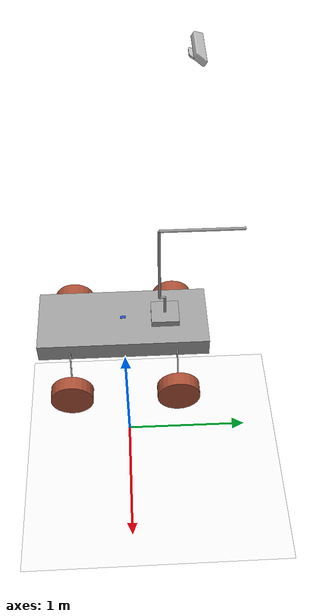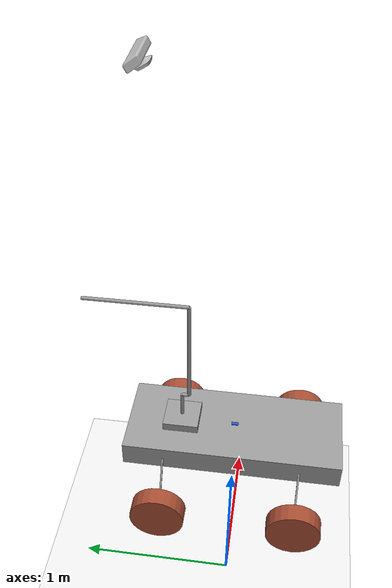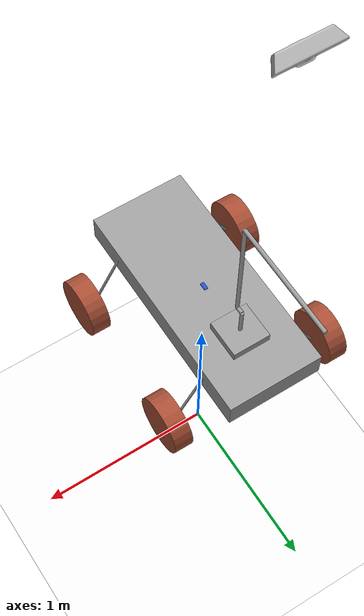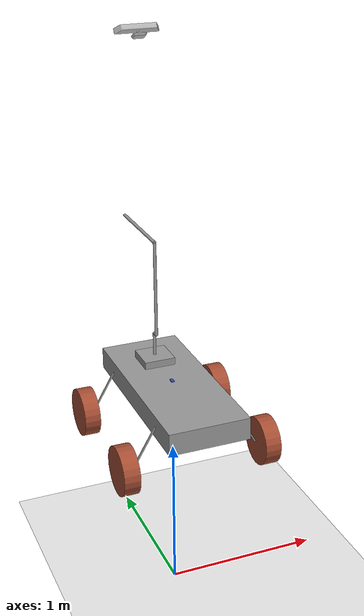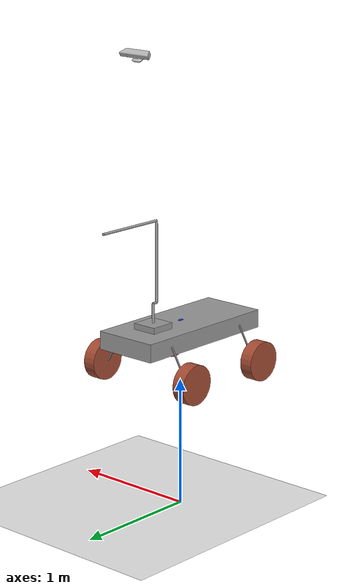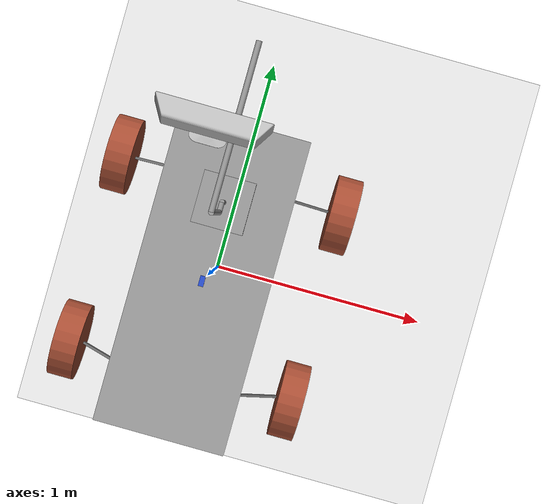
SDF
<?xml version="1.0" ?>
<sdf version='1.6'>
  <world name='sim'>
    <gravity>0 0 -9.8</gravity>
    <magnetic_field>6e-06 2.3e-05 -4.2e-05</magnetic_field>
    <atmosphere type='adiabatic'/>
    <physics name='default_physics' default='0' type='ode'>
      <max_step_size>0.001</max_step_size>
      <real_time_factor>1</real_time_factor>
      <real_time_update_rate>1000</real_time_update_rate>
    </physics>
    <scene>
      <ambient>0.6 0.6 0.6 1</ambient>
      <background>0.7 0.7 0.7 1</background>
      <shadows>1</shadows>
    </scene>
    <spherical_coordinates>
      <surface_model>EARTH_WGS84</surface_model>
      <latitude_deg>0</latitude_deg>
      <longitude_deg>0</longitude_deg>
      <elevation>0</elevation>
      <heading_deg>180</heading_deg>
    </spherical_coordinates>

    <include>
      <uri>model://Robot_Base</uri>
      <name>rover</name>
      <pose>0 0 0.4   0 0 0</pose>
    </include>

    <plugin name="SimMotorNode" filename="/home/david/Documents/14_rockraiders/devel/lib/libSimMotorNode.so"/>

    <model name='ground_plane'>
      <static>1</static>
      <link name='link'>
        <collision name='collision'>
          <geometry>
            <plane>
              <normal>0 0 1</normal>
              <size>100 100</size>
            </plane>
          </geometry>
          <surface>
            <friction>
              <ode>
                <mu>0.25</mu>
                <mu2>0.25</mu2>
              </ode>
              <torsional>
                <ode/>
              </torsional>
            </friction>
            <contact>
              <ode/>
            </contact>
            <bounce/>
          </surface>
          <max_contacts>10</max_contacts>
        </collision>
        <visual name='visual'>
          <cast_shadows>0</cast_shadows>
          <geometry>
            <plane>
              <normal>0 0 1</normal>
              <size>100 100</size>
            </plane>
          </geometry>
          <material>
            <script>
              <uri>file://media/materials/scripts/gazebo.material</uri>
              <name>Gazebo/White</name>
            </script>
          </material>
        </visual>
        <self_collide>0</self_collide>
        <kinematic>0</kinematic>
        <gravity>1</gravity>
      </link>
      <pose frame=''>0.000967 -0.039388 0 0 -0 0</pose>
    </model>
    <plugin name='FixFrictionNode' filename='libFixFrictionNode.so'/>
  </world>
</sdf>

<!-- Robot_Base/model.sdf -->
<sdf version='1.6'>
  <model name='Robot_Base'>

    <include>
      <uri> model://kinect_ros </uri>
      <name> depth_camera </name>
      <pose frame=''> 0.0 0.5 3.12   0.0 0.5235 1.57 </pose>
    </include>

    <include>
      <uri> model://gps_imu </uri>
      <name> imu </name>
      <pose frame=''> 0.0 0.0 1.06985 0.0 0.0 0.0 </pose>
    </include>

    <link name='chassis'>
      <pose frame=''>0 0 1 0 0 0</pose>
      <inertial>
        <mass>50</mass>
        <inertia>
          <ixx>1.0</ixx>
          <ixy>0</ixy>
          <ixz>0</ixz>
          <iyy>1.0</iyy>
          <iyz>0</iyz>
          <izz>1.0</izz>
        </inertia>
        <pose frame=''>0 0 0 0 0 0</pose>
      </inertial>
      <self_collide>0</self_collide>
      <kinematic>0</kinematic>
      <visual name='visual'>
        <pose frame=''>0 0 0 0 0 0</pose>
        <geometry>
          <box>
            <size>0.508 1.2192 0.1397</size>
          </box>
        </geometry>
        <material>
          <lighting>1</lighting>
          <script>
            <uri>file://media/materials/scripts/gazebo.material</uri>
            <name>Gazebo/Grey</name>
          </script>
          <ambient>0.9 0.9 0.9 1</ambient>
          <diffuse>0.7 0.7 0.7 1</diffuse>
          <specular>0.01 0.01 0.01 1</specular>
          <emissive>0 0 0 1</emissive>
          <shader type='vertex'>
            <normal_map>__default__</normal_map>
          </shader>
        </material>
        <cast_shadows>1</cast_shadows>
        <transparency>0</transparency>
      </visual>
      <collision name='collision'>
        <laser_retro>0</laser_retro>
        <max_contacts>10</max_contacts>
        <pose frame=''>0 0 0 0 -0 0</pose>
        <geometry>
          <box>
            <size>0.508 1.2192 0.1397</size>
          </box>
        </geometry>
        <surface>
          <friction>
            <ode>
              <mu>1</mu>
              <mu2>1</mu2>
              <fdir1>0 0 0</fdir1>
              <slip1>0</slip1>
              <slip2>0</slip2>
            </ode>
            <torsional>
              <coefficient>1</coefficient>
              <patch_radius>0</patch_radius>
              <surface_radius>0</surface_radius>
              <use_patch_radius>1</use_patch_radius>
              <ode>
                <slip>0</slip>
              </ode>
            </torsional>
          </friction>
          <bounce>
            <restitution_coefficient>0</restitution_coefficient>
            <threshold>1e+06</threshold>
          </bounce>
          <contact>
            <collide_without_contact>0</collide_without_contact>
            <collide_without_contact_bitmask>1</collide_without_contact_bitmask>
            <collide_bitmask>1</collide_bitmask>
            <ode>
              <soft_cfm>0</soft_cfm>
              <soft_erp>0.2</soft_erp>
              <kp>1e+13</kp>
              <kd>1</kd>
              <max_vel>0.01</max_vel>
              <min_depth>0</min_depth>
            </ode>
            <bullet>
              <split_impulse>1</split_impulse>
              <split_impulse_penetration_threshold>-0.01</split_impulse_penetration_threshold>
              <soft_cfm>0</soft_cfm>
              <soft_erp>0.2</soft_erp>
              <kp>1e+13</kp>
              <kd>1</kd>
            </bullet>
          </contact>
        </surface>
      </collision>
    </link>
    <link name='back_arm'>
      <pose frame=''>0 0.2667 1.57734 0 -0 0</pose>
      <inertial>
        <mass>1</mass>
        <inertia>
          <ixx>0.145833</ixx>
          <ixy>0</ixy>
          <ixz>0</ixz>
          <iyy>0.145833</iyy>
          <iyz>0</iyz>
          <izz>0.125</izz>
        </inertia>
        <pose frame=''>0 0 0 0 -0 0</pose>
      </inertial>
      <self_collide>0</self_collide>
      <kinematic>0</kinematic>
      <visual name='visual'>
        <pose frame=''>0 0 0 0 -0 0</pose>
        <geometry>
          <cylinder>
            <radius>0.01</radius>
            <length>0.6223</length>
          </cylinder>
        </geometry>
        <material>
          <lighting>1</lighting>
          <script>
            <uri>file://media/materials/scripts/gazebo.material</uri>
            <name>Gazebo/Grey</name>
          </script>
          <ambient>0.3 0.3 0.3 1</ambient>
          <diffuse>0.7 0.7 0.7 1</diffuse>
          <specular>0.01 0.01 0.01 1</specular>
          <emissive>0 0 0 1</emissive>
          <shader type='vertex'>
            <normal_map>__default__</normal_map>
          </shader>
        </material>
        <cast_shadows>1</cast_shadows>
        <transparency>0</transparency>
      </visual>
      <collision name='collision'>
        <laser_retro>0</laser_retro>
        <max_contacts>10</max_contacts>
        <pose frame=''>0 0 0 0 -0 0</pose>
        <geometry>
          <cylinder>
            <radius>0.01</radius>
            <length>0.6223</length>
          </cylinder>
        </geometry>
        <surface>
          <friction>
            <ode>
              <mu>1</mu>
              <mu2>1</mu2>
              <fdir1>0 0 0</fdir1>
              <slip1>0</slip1>
              <slip2>0</slip2>
            </ode>
            <torsional>
              <coefficient>1</coefficient>
              <patch_radius>0</patch_radius>
              <surface_radius>0</surface_radius>
              <use_patch_radius>1</use_patch_radius>
              <ode>
                <slip>0</slip>
              </ode>
            </torsional>
          </friction>
          <bounce>
            <restitution_coefficient>0</restitution_coefficient>
            <threshold>1e+06</threshold>
          </bounce>
          <contact>
            <collide_without_contact>0</collide_without_contact>
            <collide_without_contact_bitmask>1</collide_without_contact_bitmask>
            <collide_bitmask>1</collide_bitmask>
            <ode>
              <soft_cfm>0</soft_cfm>
              <soft_erp>0.2</soft_erp>
              <kp>1e+13</kp>
              <kd>1</kd>
              <max_vel>0.01</max_vel>
              <min_depth>0</min_depth>
            </ode>
            <bullet>
              <split_impulse>1</split_impulse>
              <split_impulse_penetration_threshold>-0.01</split_impulse_penetration_threshold>
              <soft_cfm>0</soft_cfm>
              <soft_erp>0.2</soft_erp>
              <kp>1e+13</kp>
              <kd>1</kd>
            </bullet>
          </contact>
        </surface>
      </collision>
    </link>
    <link name='base_arm'>
      <pose frame=''>-0 0.3048 1.09335 0 -0 0</pose>
      <inertial>
        <mass>1</mass>
        <inertia>
          <ixx>0.166667</ixx>
          <ixy>0</ixy>
          <ixz>0</ixz>
          <iyy>0.166667</iyy>
          <iyz>0</iyz>
          <izz>0.166667</izz>
        </inertia>
        <pose frame=''>0 0 0 0 -0 0</pose>
      </inertial>
      <self_collide>0</self_collide>
      <kinematic>0</kinematic>
      <visual name='visual'>
        <pose frame=''>0 0 0 0 -0 0</pose>
        <geometry>
          <box>
            <size>0.2 0.2 0.04699</size>
          </box>
        </geometry>
        <material>
          <lighting>1</lighting>
          <script>
            <uri>file://media/materials/scripts/gazebo.material</uri>
            <name>Gazebo/Grey</name>
          </script>
          <ambient>0.3 0.3 0.3 1</ambient>
          <diffuse>0.7 0.7 0.7 1</diffuse>
          <specular>0.01 0.01 0.01 1</specular>
          <emissive>0 0 0 1</emissive>
          <shader type='vertex'>
            <normal_map>__default__</normal_map>
          </shader>
        </material>
        <cast_shadows>1</cast_shadows>
        <transparency>0</transparency>
      </visual>
      <collision name='collision'>
        <laser_retro>0</laser_retro>
        <max_contacts>10</max_contacts>
        <pose frame=''>0 0 0 0 -0 0</pose>
        <geometry>
          <box>
            <size>0.2 0.2 0.04699</size>
          </box>
        </geometry>
        <surface>
          <friction>
            <ode>
              <mu>1</mu>
              <mu2>1</mu2>
              <fdir1>0 0 0</fdir1>
              <slip1>0</slip1>
              <slip2>0</slip2>
            </ode>
            <torsional>
              <coefficient>1</coefficient>
              <patch_radius>0</patch_radius>
              <surface_radius>0</surface_radius>
              <use_patch_radius>1</use_patch_radius>
              <ode>
                <slip>0</slip>
              </ode>
            </torsional>
          </friction>
          <bounce>
            <restitution_coefficient>0</restitution_coefficient>
            <threshold>1e+06</threshold>
          </bounce>
          <contact>
            <collide_without_contact>0</collide_without_contact>
            <collide_without_contact_bitmask>1</collide_without_contact_bitmask>
            <collide_bitmask>1</collide_bitmask>
            <ode>
              <soft_cfm>0</soft_cfm>
              <soft_erp>0.2</soft_erp>
              <kp>1e+13</kp>
              <kd>1</kd>
              <max_vel>0.01</max_vel>
              <min_depth>0</min_depth>
            </ode>
            <bullet>
              <split_impulse>1</split_impulse>
              <split_impulse_penetration_threshold>-0.01</split_impulse_penetration_threshold>
              <soft_cfm>0</soft_cfm>
              <soft_erp>0.2</soft_erp>
              <kp>1e+13</kp>
              <kd>1</kd>
            </bullet>
          </contact>
        </surface>
      </collision>
    </link>
    <link name='center_shaft_arm'>
      <pose frame=''>0 0.3048 1.19152 0 -0 0</pose>
      <inertial>
        <mass>1</mass>
        <inertia>
          <ixx>0.145833</ixx>
          <ixy>0</ixy>
          <ixz>0</ixz>
          <iyy>0.145833</iyy>
          <iyz>0</iyz>
          <izz>0.125</izz>
        </inertia>
        <pose frame=''>0 0 0 0 -0 0</pose>
      </inertial>
      <self_collide>0</self_collide>
      <kinematic>0</kinematic>
      <visual name='visual'>
        <pose frame=''>0 0 0 0 -0 0</pose>
        <geometry>
          <cylinder>
            <radius>0.01</radius>
            <length>0.149352</length>
          </cylinder>
        </geometry>
        <material>
          <lighting>1</lighting>
          <script>
            <uri>file://media/materials/scripts/gazebo.material</uri>
            <name>Gazebo/Grey</name>
          </script>
          <ambient>0.3 0.3 0.3 1</ambient>
          <diffuse>0.7 0.7 0.7 1</diffuse>
          <specular>0.01 0.01 0.01 1</specular>
          <emissive>0 0 0 1</emissive>
          <shader type='vertex'>
            <normal_map>__default__</normal_map>
          </shader>
        </material>
        <cast_shadows>1</cast_shadows>
        <transparency>0</transparency>
      </visual>
      <collision name='collision'>
        <laser_retro>0</laser_retro>
        <max_contacts>10</max_contacts>
        <pose frame=''>0 0 0 0 -0 0</pose>
        <geometry>
          <cylinder>
            <radius>0.01</radius>
            <length>0.149352</length>
          </cylinder>
        </geometry>
        <surface>
          <friction>
            <ode>
              <mu>1</mu>
              <mu2>1</mu2>
              <fdir1>0 0 0</fdir1>
              <slip1>0</slip1>
              <slip2>0</slip2>
            </ode>
            <torsional>
              <coefficient>1</coefficient>
              <patch_radius>0</patch_radius>
              <surface_radius>0</surface_radius>
              <use_patch_radius>1</use_patch_radius>
              <ode>
                <slip>0</slip>
              </ode>
            </torsional>
          </friction>
          <bounce>
            <restitution_coefficient>0</restitution_coefficient>
            <threshold>1e+06</threshold>
          </bounce>
          <contact>
            <collide_without_contact>0</collide_without_contact>
            <collide_without_contact_bitmask>1</collide_without_contact_bitmask>
            <collide_bitmask>1</collide_bitmask>
            <ode>
              <soft_cfm>0</soft_cfm>
              <soft_erp>0.2</soft_erp>
              <kp>1e+13</kp>
              <kd>1</kd>
              <max_vel>0.01</max_vel>
              <min_depth>0</min_depth>
            </ode>
            <bullet>
              <split_impulse>1</split_impulse>
              <split_impulse_penetration_threshold>-0.01</split_impulse_penetration_threshold>
              <soft_cfm>0</soft_cfm>
              <soft_erp>0.2</soft_erp>
              <kp>1e+13</kp>
              <kd>1</kd>
            </bullet>
          </contact>
        </surface>
      </collision>
    </link>
    <link name='center_shaft_offset_arm'>
      <pose frame=''>-0 0.28575 1.26619 -1.5708 0 0</pose>
      <inertial>
        <mass>1</mass>
        <inertia>
          <ixx>0.145833</ixx>
          <ixy>0</ixy>
          <ixz>0</ixz>
          <iyy>0.145833</iyy>
          <iyz>0</iyz>
          <izz>0.125</izz>
        </inertia>
        <pose frame=''>0 0 0 0 -0 0</pose>
      </inertial>
      <self_collide>0</self_collide>
      <kinematic>0</kinematic>
      <visual name='visual'>
        <pose frame=''>0 0 0 0 -0 0</pose>
        <geometry>
          <cylinder>
            <radius>0.01</radius>
            <length>0.0381</length>
          </cylinder>
        </geometry>
        <material>
          <lighting>1</lighting>
          <script>
            <uri>file://media/materials/scripts/gazebo.material</uri>
            <name>Gazebo/Grey</name>
          </script>
          <ambient>0.3 0.3 0.3 1</ambient>
          <diffuse>0.7 0.7 0.7 1</diffuse>
          <specular>0.01 0.01 0.01 1</specular>
          <emissive>0 0 0 1</emissive>
          <shader type='vertex'>
            <normal_map>__default__</normal_map>
          </shader>
        </material>
        <cast_shadows>1</cast_shadows>
        <transparency>0</transparency>
      </visual>
      <collision name='collision'>
        <laser_retro>0</laser_retro>
        <max_contacts>10</max_contacts>
        <pose frame=''>0 0 0 0 -0 0</pose>
        <geometry>
          <cylinder>
            <radius>0.01</radius>
            <length>0.0381</length>
          </cylinder>
        </geometry>
        <surface>
          <friction>
            <ode>
              <mu>1</mu>
              <mu2>1</mu2>
              <fdir1>0 0 0</fdir1>
              <slip1>0</slip1>
              <slip2>0</slip2>
            </ode>
            <torsional>
              <coefficient>1</coefficient>
              <patch_radius>0</patch_radius>
              <surface_radius>0</surface_radius>
              <use_patch_radius>1</use_patch_radius>
              <ode>
                <slip>0</slip>
              </ode>
            </torsional>
          </friction>
          <bounce>
            <restitution_coefficient>0</restitution_coefficient>
            <threshold>1e+06</threshold>
          </bounce>
          <contact>
            <collide_without_contact>0</collide_without_contact>
            <collide_without_contact_bitmask>1</collide_without_contact_bitmask>
            <collide_bitmask>1</collide_bitmask>
            <ode>
              <soft_cfm>0</soft_cfm>
              <soft_erp>0.2</soft_erp>
              <kp>1e+13</kp>
              <kd>1</kd>
              <max_vel>0.01</max_vel>
              <min_depth>0</min_depth>
            </ode>
            <bullet>
              <split_impulse>1</split_impulse>
              <split_impulse_penetration_threshold>-0.01</split_impulse_penetration_threshold>
              <soft_cfm>0</soft_cfm>
              <soft_erp>0.2</soft_erp>
              <kp>1e+13</kp>
              <kd>1</kd>
            </bullet>
          </contact>
        </surface>
      </collision>
    </link>
    <link name='fore_arm'>
      <pose frame=''>0 0.5461 1.88849 1.57079 -0 0</pose>
      <inertial>
        <mass>1</mass>
        <inertia>
          <ixx>0.145833</ixx>
          <ixy>0</ixy>
          <ixz>0</ixz>
          <iyy>0.145833</iyy>
          <iyz>0</iyz>
          <izz>0.125</izz>
        </inertia>
        <pose frame=''>0 0 0 0 -0 0</pose>
      </inertial>
      <self_collide>0</self_collide>
      <kinematic>0</kinematic>
      <visual name='visual'>
        <pose frame=''>0 0 0 0 -0 0</pose>
        <geometry>
          <cylinder>
            <radius>0.01</radius>
            <length>0.5588</length>
          </cylinder>
        </geometry>
        <material>
          <lighting>1</lighting>
          <script>
            <uri>file://media/materials/scripts/gazebo.material</uri>
            <name>Gazebo/Grey</name>
          </script>
          <ambient>0.3 0.3 0.3 1</ambient>
          <diffuse>0.7 0.7 0.7 1</diffuse>
          <specular>0.01 0.01 0.01 1</specular>
          <emissive>0 0 0 1</emissive>
          <shader type='vertex'>
            <normal_map>__default__</normal_map>
          </shader>
        </material>
        <cast_shadows>1</cast_shadows>
        <transparency>0</transparency>
      </visual>
      <collision name='collision'>
        <laser_retro>0</laser_retro>
        <max_contacts>10</max_contacts>
        <pose frame=''>0 0 0 0 -0 0</pose>
        <geometry>
          <cylinder>
            <radius>0.01</radius>
            <length>0.5588</length>
          </cylinder>
        </geometry>
        <surface>
          <friction>
            <ode>
              <mu>1</mu>
              <mu2>1</mu2>
              <fdir1>0 0 0</fdir1>
              <slip1>0</slip1>
              <slip2>0</slip2>
            </ode>
            <torsional>
              <coefficient>1</coefficient>
              <patch_radius>0</patch_radius>
              <surface_radius>0</surface_radius>
              <use_patch_radius>1</use_patch_radius>
              <ode>
                <slip>0</slip>
              </ode>
            </torsional>
          </friction>
          <bounce>
            <restitution_coefficient>0</restitution_coefficient>
            <threshold>1e+06</threshold>
          </bounce>
          <contact>
            <collide_without_contact>0</collide_without_contact>
            <collide_without_contact_bitmask>1</collide_without_contact_bitmask>
            <collide_bitmask>1</collide_bitmask>
            <ode>
              <soft_cfm>0</soft_cfm>
              <soft_erp>0.2</soft_erp>
              <kp>1e+13</kp>
              <kd>1</kd>
              <max_vel>0.01</max_vel>
              <min_depth>0</min_depth>
            </ode>
            <bullet>
              <split_impulse>1</split_impulse>
              <split_impulse_penetration_threshold>-0.01</split_impulse_penetration_threshold>
              <soft_cfm>0</soft_cfm>
              <soft_erp>0.2</soft_erp>
              <kp>1e+13</kp>
              <kd>1</kd>
            </bullet>
          </contact>
        </surface>
      </collision>
    </link>
    <link name='left_back_leg'>
      <pose frame=''>0.3238 0.381 0.879102 0 1.0472 0</pose>
      <inertial>
        <mass>1</mass>
        <inertia>
          <ixx>0.166667</ixx>
          <ixy>0</ixy>
          <ixz>0</ixz>
          <iyy>0.166667</iyy>
          <iyz>0</iyz>
          <izz>0.166667</izz>
        </inertia>
        <pose frame=''>0 0 0 0 -0 0</pose>
      </inertial>
      <self_collide>0</self_collide>
      <kinematic>0</kinematic>
      <visual name='visual'>
        <pose frame=''>0 0 0 0 -0 0</pose>
        <geometry>
          <box>
            <size>0.2794 0.01 0.01</size>
          </box>
        </geometry>
        <material>
          <lighting>1</lighting>
          <script>
            <uri>file://media/materials/scripts/gazebo.material</uri>
            <name>Gazebo/Grey</name>
          </script>
          <ambient>0.5 0.5 0.5 1</ambient>
          <diffuse>0.7 0.7 0.7 1</diffuse>
          <specular>0.01 0.01 0.01 1</specular>
          <emissive>0 0 0 1</emissive>
          <shader type='vertex'>
            <normal_map>__default__</normal_map>
          </shader>
        </material>
        <cast_shadows>1</cast_shadows>
        <transparency>0</transparency>
      </visual>
      <collision name='collision_0'>
        <laser_retro>0</laser_retro>
        <max_contacts>10</max_contacts>
        <pose frame=''>0 0 0 0 -0 0</pose>
        <geometry>
          <box>
            <size>0.2794 0.01 0.01</size>
          </box>
        </geometry>
        <surface>
          <friction>
            <ode>
              <mu>1</mu>
              <mu2>1</mu2>
              <fdir1>0 0 0</fdir1>
              <slip1>0</slip1>
              <slip2>0</slip2>
            </ode>
            <torsional>
              <coefficient>1</coefficient>
              <patch_radius>0</patch_radius>
              <surface_radius>0</surface_radius>
              <use_patch_radius>1</use_patch_radius>
              <ode>
                <slip>0</slip>
              </ode>
            </torsional>
          </friction>
          <bounce>
            <restitution_coefficient>0</restitution_coefficient>
            <threshold>1e+06</threshold>
          </bounce>
          <contact>
            <collide_without_contact>0</collide_without_contact>
            <collide_without_contact_bitmask>1</collide_without_contact_bitmask>
            <collide_bitmask>1</collide_bitmask>
            <ode>
              <soft_cfm>0</soft_cfm>
              <soft_erp>0.2</soft_erp>
              <kp>1e+13</kp>
              <kd>1</kd>
              <max_vel>0.01</max_vel>
              <min_depth>0</min_depth>
            </ode>
            <bullet>
              <split_impulse>1</split_impulse>
              <split_impulse_penetration_threshold>-0.01</split_impulse_penetration_threshold>
              <soft_cfm>0</soft_cfm>
              <soft_erp>0.2</soft_erp>
              <kp>1e+13</kp>
              <kd>1</kd>
            </bullet>
          </contact>
        </surface>
      </collision>
    </link>

    <link name='left_front_leg'>
      <pose frame=''>0.3238 -0.381 0.879102 0 1.0472 0</pose>
      <inertial>
        <mass>1</mass>
        <inertia>
          <ixx>0.166667</ixx>
          <ixy>0</ixy>
          <ixz>0</ixz>
          <iyy>0.166667</iyy>
          <iyz>0</iyz>
          <izz>0.166667</izz>
        </inertia>
        <pose frame=''>0 0 0 0 -0 0</pose>
      </inertial>
      <self_collide>0</self_collide>
      <kinematic>0</kinematic>
      <visual name='visual'>
        <pose frame=''>0 0 0 0 -0 0</pose>
        <geometry>
          <box>
            <size>0.2794 0.01 0.01</size>
          </box>
        </geometry>
        <material>
          <lighting>1</lighting>
          <script>
            <uri>file://media/materials/scripts/gazebo.material</uri>
            <name>Gazebo/Grey</name>
          </script>
          <ambient>0.5 0.5 0.5 1</ambient>
          <diffuse>0.7 0.7 0.7 1</diffuse>
          <specular>0.01 0.01 0.01 1</specular>
          <emissive>0 0 0 1</emissive>
          <shader type='vertex'>
            <normal_map>__default__</normal_map>
          </shader>
        </material>
        <cast_shadows>1</cast_shadows>
        <transparency>0</transparency>
      </visual>
      <collision name='collision_0'>
        <laser_retro>0</laser_retro>
        <max_contacts>10</max_contacts>
        <pose frame=''>0 0 0 0 -0 0</pose>
        <geometry>
          <box>
            <size>0.2794 0.01 0.01</size>
          </box>
        </geometry>
        <surface>
          <friction>
            <ode>
              <mu>1</mu>
              <mu2>1</mu2>
              <fdir1>0 0 0</fdir1>
              <slip1>0</slip1>
              <slip2>0</slip2>
            </ode>
            <torsional>
              <coefficient>1</coefficient>
              <patch_radius>0</patch_radius>
              <surface_radius>0</surface_radius>
              <use_patch_radius>1</use_patch_radius>
              <ode>
                <slip>0</slip>
              </ode>
            </torsional>
          </friction>
          <bounce>
            <restitution_coefficient>0</restitution_coefficient>
            <threshold>1e+06</threshold>
          </bounce>
          <contact>
            <collide_without_contact>0</collide_without_contact>
            <collide_without_contact_bitmask>1</collide_without_contact_bitmask>
            <collide_bitmask>1</collide_bitmask>
            <ode>
              <soft_cfm>0</soft_cfm>
              <soft_erp>0.2</soft_erp>
              <kp>1e+13</kp>
              <kd>1</kd>
              <max_vel>0.01</max_vel>
              <min_depth>0</min_depth>
            </ode>
            <bullet>
              <split_impulse>1</split_impulse>
              <split_impulse_penetration_threshold>-0.01</split_impulse_penetration_threshold>
              <soft_cfm>0</soft_cfm>
              <soft_erp>0.2</soft_erp>
              <kp>1e+13</kp>
              <kd>1</kd>
            </bullet>
          </contact>
        </surface>
      </collision>
    </link>

    <link name='right_back_leg'>
      <pose frame=''>-0.3238 0.381 0.879102 0 -1.0472 0</pose>
      <inertial>
        <mass>1</mass>
        <inertia>
          <ixx>0.166667</ixx>
          <ixy>0</ixy>
          <ixz>0</ixz>
          <iyy>0.166667</iyy>
          <iyz>0</iyz>
          <izz>0.166667</izz>
        </inertia>
        <pose frame=''>0 0 0 0 -0 0</pose>
      </inertial>
      <self_collide>0</self_collide>
      <kinematic>0</kinematic>
      <visual name='visual'>
        <pose frame=''>0 0 0 0 -0 0</pose>
        <geometry>
          <box>
            <size>0.2794 0.01 0.01</size>
          </box>
        </geometry>
        <material>
          <lighting>1</lighting>
          <script>
            <uri>file://media/materials/scripts/gazebo.material</uri>
            <name>Gazebo/Grey</name>
          </script>
          <ambient>0.5 0.5 0.5 1</ambient>
          <diffuse>0.7 0.7 0.7 1</diffuse>
          <specular>0.01 0.01 0.01 1</specular>
          <emissive>0 0 0 1</emissive>
          <shader type='vertex'>
            <normal_map>__default__</normal_map>
          </shader>
        </material>
        <cast_shadows>1</cast_shadows>
        <transparency>0</transparency>
      </visual>
      <collision name='collision_0'>
        <laser_retro>0</laser_retro>
        <max_contacts>10</max_contacts>
        <pose frame=''>0 0 0 0 -0 0</pose>
        <geometry>
          <box>
            <size>0.2794 0.01 0.01</size>
          </box>
        </geometry>
        <surface>
          <friction>
            <ode>
              <mu>1</mu>
              <mu2>1</mu2>
              <fdir1>0 0 0</fdir1>
              <slip1>0</slip1>
              <slip2>0</slip2>
            </ode>
            <torsional>
              <coefficient>1</coefficient>
              <patch_radius>0</patch_radius>
              <surface_radius>0</surface_radius>
              <use_patch_radius>1</use_patch_radius>
              <ode>
                <slip>0</slip>
              </ode>
            </torsional>
          </friction>
          <bounce>
            <restitution_coefficient>0</restitution_coefficient>
            <threshold>1e+06</threshold>
          </bounce>
          <contact>
            <collide_without_contact>0</collide_without_contact>
            <collide_without_contact_bitmask>1</collide_without_contact_bitmask>
            <collide_bitmask>1</collide_bitmask>
            <ode>
              <soft_cfm>0</soft_cfm>
              <soft_erp>0.2</soft_erp>
              <kp>1e+13</kp>
              <kd>1</kd>
              <max_vel>0.01</max_vel>
              <min_depth>0</min_depth>
            </ode>
            <bullet>
              <split_impulse>1</split_impulse>
              <split_impulse_penetration_threshold>-0.01</split_impulse_penetration_threshold>
              <soft_cfm>0</soft_cfm>
              <soft_erp>0.2</soft_erp>
              <kp>1e+13</kp>
              <kd>1</kd>
            </bullet>
          </contact>
        </surface>
      </collision>
    </link>

    <link name='right_front_leg'>
      <pose frame=''>-0.3238 -0.381 0.879102 0 -1.0472 0</pose>
      <inertial>
        <mass>1</mass>
        <inertia>
          <ixx>0.166667</ixx>
          <ixy>0</ixy>
          <ixz>0</ixz>
          <iyy>0.166667</iyy>
          <iyz>0</iyz>
          <izz>0.166667</izz>
        </inertia>
        <pose frame=''>0 0 0 0 -0 0</pose>
      </inertial>
      <self_collide>0</self_collide>
      <kinematic>0</kinematic>
      <visual name='visual'>
        <pose frame=''>0 0 0 0 -0 0</pose>
        <geometry>
          <box>
            <size>0.2794 0.01 0.01</size>
          </box>
        </geometry>
        <material>
          <lighting>1</lighting>
          <script>
            <uri>file://media/materials/scripts/gazebo.material</uri>
            <name>Gazebo/Grey</name>
          </script>
          <ambient>0.5 0.5 0.5 1</ambient>
          <diffuse>0.7 0.7 0.7 1</diffuse>
          <specular>0.01 0.01 0.01 1</specular>
          <emissive>0 0 0 1</emissive>
          <shader type='vertex'>
            <normal_map>__default__</normal_map>
          </shader>
        </material>
        <cast_shadows>1</cast_shadows>
        <transparency>0</transparency>
      </visual>
      <collision name='collision_0'>
        <laser_retro>0</laser_retro>
        <max_contacts>10</max_contacts>
        <pose frame=''>0 0 0 0 -0 0</pose>
        <geometry>
          <box>
            <size>0.2794 0.01 0.01</size>
          </box>
        </geometry>
        <surface>
          <friction>
            <ode>
              <mu>1</mu>
              <mu2>1</mu2>
              <fdir1>0 0 0</fdir1>
              <slip1>0</slip1>
              <slip2>0</slip2>
            </ode>
            <torsional>
              <coefficient>1</coefficient>
              <patch_radius>0</patch_radius>
              <surface_radius>0</surface_radius>
              <use_patch_radius>1</use_patch_radius>
              <ode>
                <slip>0</slip>
              </ode>
            </torsional>
          </friction>
          <bounce>
            <restitution_coefficient>0</restitution_coefficient>
            <threshold>1e+06</threshold>
          </bounce>
          <contact>
            <collide_without_contact>0</collide_without_contact>
            <collide_without_contact_bitmask>1</collide_without_contact_bitmask>
            <collide_bitmask>1</collide_bitmask>
            <ode>
              <soft_cfm>0</soft_cfm>
              <soft_erp>0.2</soft_erp>
              <kp>1e+13</kp>
              <kd>1</kd>
              <max_vel>0.01</max_vel>
              <min_depth>0</min_depth>
            </ode>
            <bullet>
              <split_impulse>1</split_impulse>
              <split_impulse_penetration_threshold>-0.01</split_impulse_penetration_threshold>
              <soft_cfm>0</soft_cfm>
              <soft_erp>0.2</soft_erp>
              <kp>1e+13</kp>
              <kd>1</kd>
            </bullet>
          </contact>
        </surface>
      </collision>
    </link>

    <link name='right_back_wheel'>
      <pose frame=''>0.45 -0.38101 0.758032 2.98885 1.57079 2.98885</pose>
      <inertial>
        <mass>1</mass>
        <inertia>
          <ixx>0.145833</ixx>
          <ixy>0</ixy>
          <ixz>0</ixz>
          <iyy>0.145833</iyy>
          <iyz>0</iyz>
          <izz>0.125</izz>
        </inertia>
        <pose frame=''>0 0 0 0 -0 0</pose>
      </inertial>
      <self_collide>0</self_collide>
      <kinematic>0</kinematic>
      <visual name='visual'>
        <pose frame=''>0 0 0 0 -0 0</pose>
        <geometry>
          <cylinder>
            <radius>0.1525</radius>
            <length>0.1</length>
          </cylinder>
        </geometry>
        <material>
          <lighting>1</lighting>
          <script>
            <uri>file://media/materials/scripts/gazebo.material</uri>
            <name>Gazebo/Bricks</name>
          </script>
          <shader type='vertex'>
            <normal_map>__default__</normal_map>
          </shader>
        </material>
        <cast_shadows>1</cast_shadows>
        <transparency>0</transparency>
      </visual>
      <collision name='collision'>
        <laser_retro>0</laser_retro>
        <max_contacts>10</max_contacts>
        <pose frame=''>0 0 0 0 -0 0</pose>
        <geometry>
          <cylinder>
            <radius>0.1525</radius>
            <length>0.1</length>
          </cylinder>
        </geometry>
        <surface>
          <friction>
            <ode>
              <mu>20</mu>
              <mu2>20</mu2>
              <fdir1>0 0 0</fdir1>
              <slip1>0.0</slip1>
              <slip2>0.0</slip2>
            </ode>
            <torsional>
              <coefficient>1</coefficient>
              <patch_radius>0</patch_radius>
              <surface_radius>0</surface_radius>
              <use_patch_radius>1</use_patch_radius>
              <ode>
                <slip>0</slip>
              </ode>
            </torsional>
          </friction>
          <bounce>
            <restitution_coefficient>0</restitution_coefficient>
            <threshold>1e+06</threshold>
          </bounce>
          <contact>
            <collide_without_contact>0</collide_without_contact>
            <collide_without_contact_bitmask>1</collide_without_contact_bitmask>
            <collide_bitmask>1</collide_bitmask>
            <ode>
              <soft_cfm>0</soft_cfm>
              <soft_erp>0.2</soft_erp>
              <kp>1e+13</kp>
              <kd>1</kd>
              <max_vel>0.01</max_vel>
              <min_depth>0</min_depth>
            </ode>
            <bullet>
              <split_impulse>1</split_impulse>
              <split_impulse_penetration_threshold>-0.01</split_impulse_penetration_threshold>
              <soft_cfm>0</soft_cfm>
              <soft_erp>0.2</soft_erp>
              <kp>1e+13</kp>
              <kd>1</kd>
            </bullet>
          </contact>
        </surface>
      </collision>
    </link>

    <link name='left_back_wheel'>
      <pose frame=''>-0.45 -0.380961 0.758096 2.91124 1.57079 2.91123</pose>
      <inertial>
        <mass>1</mass>
        <inertia>
          <ixx>0.145833</ixx>
          <ixy>0</ixy>
          <ixz>0</ixz>
          <iyy>0.145833</iyy>
          <iyz>0</iyz>
          <izz>0.125</izz>
        </inertia>
        <pose frame=''>0 0 0 0 -0 0</pose>
      </inertial>
      <self_collide>0</self_collide>
      <kinematic>0</kinematic>
      <visual name='visual'>
        <pose frame=''>0 0 0 0 -0 0</pose>
        <geometry>
          <cylinder>
            <radius>0.1525</radius>
            <length>0.1</length>
          </cylinder>
        </geometry>
        <material>
          <lighting>1</lighting>
          <script>
            <uri>file://media/materials/scripts/gazebo.material</uri>
            <name>Gazebo/Bricks</name>
          </script>
          <shader type='vertex'>
            <normal_map>__default__</normal_map>
          </shader>
        </material>
        <cast_shadows>1</cast_shadows>
        <transparency>0</transparency>
      </visual>
      <collision name='collision'>
        <laser_retro>0</laser_retro>
        <max_contacts>10</max_contacts>
        <pose frame=''>0 0 0 0 -0 0</pose>
        <geometry>
          <cylinder>
            <radius>0.1525</radius>
            <length>0.1</length>
          </cylinder>
        </geometry>
        <surface>
          <friction>
            <ode>
              <mu>20</mu>
              <mu2>20</mu2>
              <fdir1>0 0 0</fdir1>
              <slip1>0.0</slip1>
              <slip2>0.0</slip2>
            </ode>
            <torsional>
              <coefficient>1</coefficient>
              <patch_radius>0</patch_radius>
              <surface_radius>0</surface_radius>
              <use_patch_radius>1</use_patch_radius>
              <ode>
                <slip>0</slip>
              </ode>
            </torsional>
          </friction>
          <bounce>
            <restitution_coefficient>0</restitution_coefficient>
            <threshold>1e+06</threshold>
          </bounce>
          <contact>
            <collide_without_contact>0</collide_without_contact>
            <collide_without_contact_bitmask>1</collide_without_contact_bitmask>
            <collide_bitmask>1</collide_bitmask>
            <ode>
              <soft_cfm>0</soft_cfm>
              <soft_erp>0.2</soft_erp>
              <kp>1e+13</kp>
              <kd>1</kd>
              <max_vel>0.01</max_vel>
              <min_depth>0</min_depth>
            </ode>
            <bullet>
              <split_impulse>1</split_impulse>
              <split_impulse_penetration_threshold>-0.01</split_impulse_penetration_threshold>
              <soft_cfm>0</soft_cfm>
              <soft_erp>0.2</soft_erp>
              <kp>1e+13</kp>
              <kd>1</kd>
            </bullet>
          </contact>
        </surface>
      </collision>
    </link>

    <link name='right_front_wheel'>
      <pose frame=''>0.45 0.380992 0.758093 2.99584 1.57079 2.99582</pose>
      <inertial>
        <mass>1</mass>
        <inertia>
          <ixx>0.145833</ixx>
          <ixy>0</ixy>
          <ixz>0</ixz>
          <iyy>0.145833</iyy>
          <iyz>0</iyz>
          <izz>0.125</izz>
        </inertia>
        <pose frame=''>0 0 0 0 -0 0</pose>
      </inertial>
      <self_collide>0</self_collide>
      <kinematic>0</kinematic>
      <visual name='visual'>
        <pose frame=''>0 0 0 0 -0 0</pose>
        <geometry>
          <cylinder>
            <radius>0.1525</radius>
            <length>0.1</length>
          </cylinder>
        </geometry>
        <material>
          <lighting>1</lighting>
          <script>
            <uri>file://media/materials/scripts/gazebo.material</uri>
            <name>Gazebo/Bricks</name>
          </script>
          <shader type='vertex'>
            <normal_map>__default__</normal_map>
          </shader>
        </material>
        <cast_shadows>1</cast_shadows>
        <transparency>0</transparency>
      </visual>
      <collision name='collision'>
        <laser_retro>0</laser_retro>
        <max_contacts>10</max_contacts>
        <pose frame=''>0 0 0 0 -0 0</pose>
        <geometry>
          <cylinder>
            <radius>0.1525</radius>
            <length>0.1</length>
          </cylinder>
        </geometry>
        <surface>
          <friction>
            <ode>
              <mu>20</mu>
              <mu2>20</mu2>
              <fdir1>0 0 0</fdir1>
              <slip1>0.0</slip1>
              <slip2>0.0</slip2>
            </ode>
            <torsional>
              <coefficient>1</coefficient>
              <patch_radius>0</patch_radius>
              <surface_radius>0</surface_radius>
              <use_patch_radius>1</use_patch_radius>
              <ode>
                <slip>0</slip>
              </ode>
            </torsional>
          </friction>
          <bounce>
            <restitution_coefficient>0</restitution_coefficient>
            <threshold>1e+06</threshold>
          </bounce>
          <contact>
            <collide_without_contact>0</collide_without_contact>
            <collide_without_contact_bitmask>1</collide_without_contact_bitmask>
            <collide_bitmask>1</collide_bitmask>
            <ode>
              <soft_cfm>0</soft_cfm>
              <soft_erp>0.2</soft_erp>
              <kp>1e+13</kp>
              <kd>1</kd>
              <max_vel>0.01</max_vel>
              <min_depth>0</min_depth>
            </ode>
            <bullet>
              <split_impulse>1</split_impulse>
              <split_impulse_penetration_threshold>-0.01</split_impulse_penetration_threshold>
              <soft_cfm>0</soft_cfm>
              <soft_erp>0.2</soft_erp>
              <kp>1e+13</kp>
              <kd>1</kd>
            </bullet>
          </contact>
        </surface>
      </collision>
    </link>

    <link name='left_front_wheel'>
      <pose frame=''>-0.45 0.381037 0.758158 2.91782 1.57079 2.9178</pose>
      <inertial>
        <mass>1</mass>
        <inertia>
          <ixx>0.145833</ixx>
          <ixy>0</ixy>
          <ixz>0</ixz>
          <iyy>0.145833</iyy>
          <iyz>0</iyz>
          <izz>0.125</izz>
        </inertia>
        <pose frame=''>0 0 0 0 -0 0</pose>
      </inertial>
      <self_collide>0</self_collide>
      <kinematic>0</kinematic>
      <visual name='visual'>
        <pose frame=''>0 0 0 0 -0 0</pose>
        <geometry>
          <cylinder>
            <radius>0.1525</radius>
            <length>0.1</length>
          </cylinder>
        </geometry>
        <material>
          <lighting>1</lighting>
          <script>
            <uri>file://media/materials/scripts/gazebo.material</uri>
            <name>Gazebo/Bricks</name>
          </script>
          <shader type='vertex'>
            <normal_map>__default__</normal_map>
          </shader>
        </material>
        <cast_shadows>1</cast_shadows>
        <transparency>0</transparency>
      </visual>
      <collision name='collision'>
        <laser_retro>0</laser_retro>
        <max_contacts>10</max_contacts>
        <pose frame=''>0 0 0 0 -0 0</pose>
        <geometry>
          <cylinder>
            <radius>0.1525</radius>
            <length>0.1</length>
          </cylinder>
        </geometry>
        <surface>
          <friction>
            <ode>
              <mu>20</mu>
              <mu2>20</mu2>
              <fdir1>0 0 0</fdir1>
              <slip1>0.0</slip1>
              <slip2>0.0</slip2>
            </ode>
            <torsional>
              <coefficient>1</coefficient>
              <patch_radius>0</patch_radius>
              <surface_radius>0</surface_radius>
              <use_patch_radius>1</use_patch_radius>
              <ode>
                <slip>0</slip>
              </ode>
            </torsional>
          </friction>
          <bounce>
            <restitution_coefficient>0</restitution_coefficient>
            <threshold>1e+06</threshold>
          </bounce>
          <contact>
            <collide_without_contact>0</collide_without_contact>
            <collide_without_contact_bitmask>1</collide_without_contact_bitmask>
            <collide_bitmask>1</collide_bitmask>
            <ode>
              <soft_cfm>0</soft_cfm>
              <soft_erp>0.2</soft_erp>
              <kp>1e+13</kp>
              <kd>1</kd>
              <max_vel>0.01</max_vel>
              <min_depth>0</min_depth>
            </ode>
            <bullet>
              <split_impulse>1</split_impulse>
              <split_impulse_penetration_threshold>-0.01</split_impulse_penetration_threshold>
              <soft_cfm>0</soft_cfm>
              <soft_erp>0.2</soft_erp>
              <kp>1e+13</kp>
              <kd>1</kd>
            </bullet>
          </contact>
        </surface>
      </collision>
    </link>

    <joint name='armbase_armcentershaft' type='revolute'>
      <parent>base_arm</parent>
      <child>center_shaft_arm</child>
      <pose frame=''>0 0 -0.074676 0 -0 0</pose>
      <axis>
        <xyz>0 0 1</xyz>
        <use_parent_model_frame>0</use_parent_model_frame>
        <limit>
          <lower>-3.1</lower>
          <upper>3.1</upper>
          <effort>-1</effort>
          <velocity>-1</velocity>
        </limit>
        <dynamics>
          <spring_reference>0</spring_reference>
          <spring_stiffness>0</spring_stiffness>
          <damping>0</damping>
          <friction>10000</friction>
        </dynamics>
      </axis>
      <physics>
        <ode>
          <limit>
            <cfm>0</cfm>
            <erp>0.2</erp>
          </limit>
          <suspension>
            <cfm>0</cfm>
            <erp>0.2</erp>
          </suspension>
        </ode>
      </physics>
    </joint>
    <joint name='armcentershaft_withoffset' type='fixed'>
      <parent>center_shaft_arm</parent>
      <child>center_shaft_offset_arm</child>
      <pose frame=''>0 0 0 0 -0 0</pose>
      <physics>
        <ode>
          <limit>
            <cfm>0</cfm>
            <erp>0.2</erp>
          </limit>
          <suspension>
            <cfm>0</cfm>
            <erp>0.2</erp>
          </suspension>
        </ode>
      </physics>
    </joint>
    <joint name='armcentershaftoffset_backarm' type='revolute'>
      <parent>center_shaft_offset_arm</parent>
      <child>back_arm</child>
      <pose frame=''>0 0 -0.31115 0 -0 0</pose>
      <axis>
        <xyz>-1 0 0</xyz>
        <use_parent_model_frame>0</use_parent_model_frame>
        <limit>
          <lower>-1.1</lower>
          <upper>1.1</upper>
          <effort>-1</effort>
          <velocity>-1</velocity>
        </limit>
        <dynamics>
          <spring_reference>0</spring_reference>
          <spring_stiffness>0</spring_stiffness>
          <damping>0</damping>
          <friction>1000</friction>
        </dynamics>
      </axis>
      <physics>
        <ode>
          <limit>
            <cfm>0</cfm>
            <erp>0.2</erp>
          </limit>
          <suspension>
            <cfm>0</cfm>
            <erp>0.2</erp>
          </suspension>
        </ode>
      </physics>
    </joint>
    <joint name='backarm_forearm' type='revolute'>
      <parent>back_arm</parent>
      <child>fore_arm</child>
      <pose frame=''>0 0 0.2794 0 -0 0</pose>
      <axis>
        <xyz>-1 0 0</xyz>
        <use_parent_model_frame>0</use_parent_model_frame>
        <limit>
          <lower>-1.1</lower>
          <upper>1.2</upper>
          <effort>-1</effort>
          <velocity>-1</velocity>
        </limit>
        <dynamics>
          <spring_reference>0</spring_reference>
          <spring_stiffness>0</spring_stiffness>
          <damping>0</damping>
          <friction>1000</friction>
        </dynamics>
      </axis>
      <physics>
        <ode>
          <limit>
            <cfm>0</cfm>
            <erp>0.2</erp>
          </limit>
          <suspension>
            <cfm>0</cfm>
            <erp>0.2</erp>
          </suspension>
        </ode>
      </physics>
    </joint>
    <joint name='chassis_armbase' type='fixed'>
      <parent>chassis</parent>
      <child>base_arm</child>
      <pose frame=''>0 0 0 0 -0 0</pose>
      <physics>
        <ode>
          <limit>
            <cfm>0</cfm>
            <erp>0.2</erp>
          </limit>
          <suspension>
            <cfm>0</cfm>
            <erp>0.2</erp>
          </suspension>
        </ode>
      </physics>
    </joint>
    <joint name='chassis_left_front_leg' type='fixed'>
      <parent>chassis</parent>
      <child>left_front_leg</child>
      <pose frame=''>0 0 0 0 -0 0</pose>
      <physics>
        <ode>
          <limit>
            <cfm>0</cfm>
            <erp>0.2</erp>
          </limit>
          <suspension>
            <cfm>0</cfm>
            <erp>0.2</erp>
          </suspension>
        </ode>
      </physics>
    </joint>
    <joint name='chassis_right_back_leg' type='fixed'>
      <parent>chassis</parent>
      <child>right_back_leg</child>
      <pose frame=''>0 0 0 0 -0 0</pose>
      <physics>
        <ode>
          <limit>
            <cfm>0</cfm>
            <erp>0.2</erp>
          </limit>
          <suspension>
            <cfm>0</cfm>
            <erp>0.2</erp>
          </suspension>
        </ode>
      </physics>
    </joint>
    <joint name='chassis_right_front_leg' type='fixed'>
      <parent>chassis</parent>
      <child>right_front_leg</child>
      <pose frame=''>0 0 0 0 -0 0</pose>
      <physics>
        <ode>
          <limit>
            <cfm>0</cfm>
            <erp>0.2</erp>
          </limit>
          <suspension>
            <cfm>0</cfm>
            <erp>0.2</erp>
          </suspension>
        </ode>
      </physics>
    </joint>
    <joint name='chassisis_left_back_leg' type='fixed'>
      <parent>chassis</parent>
      <child>left_back_leg</child>
      <pose frame=''>0 0 0 0 -0 0</pose>
      <physics>
        <ode>
          <limit>
            <cfm>0</cfm>
            <erp>0.2</erp>
          </limit>
          <suspension>
            <cfm>0</cfm>
            <erp>0.2</erp>
          </suspension>
        </ode>
      </physics>
    </joint>
    <joint name='left_back_wheel_hinge' type='revolute'>
      <parent>left_back_leg</parent>
      <child>left_back_wheel</child>
      <pose frame='left_back_wheel_hinge_frame'>0 0 0 0 -0 0</pose>
      <axis>
        <xyz>0 0 -1</xyz>
        <use_parent_model_frame>0</use_parent_model_frame>
        <limit>
          <effort>10000</effort>
          <velocity>6</velocity>
        </limit>
        <dynamics>
          <spring_reference>0</spring_reference>
          <spring_stiffness>0</spring_stiffness>
          <damping>0.500001</damping>
          <friction>0.1001</friction>
        </dynamics>
      </axis>
      <physics>
        <ode>
          <limit>
            <cfm>0</cfm>
            <erp>0.2</erp>
          </limit>
          <suspension>
            <cfm>0</cfm>
            <erp>0.2</erp>
          </suspension>
        </ode>
      </physics>
    </joint>
    <joint name='left_front_wheel_hinge' type='revolute'>
      <parent>left_front_leg</parent>
      <child>left_front_wheel</child>
      <pose frame=''>0 0 0 0 -0 0</pose>
      <axis>
        <xyz>0 0 -1</xyz>
        <use_parent_model_frame>0</use_parent_model_frame>
        <limit>
          <lower>-1e+16</lower>
          <upper>1e+16</upper>
          <effort>10000</effort>
          <velocity>6</velocity>
        </limit>
        <dynamics>
          <spring_reference>0</spring_reference>
          <spring_stiffness>0</spring_stiffness>
          <damping>0.500001</damping>
          <friction>0.1001</friction>
        </dynamics>
      </axis>
      <physics>
        <ode>
          <limit>
            <cfm>0</cfm>
            <erp>0.2</erp>
          </limit>
          <suspension>
            <cfm>0</cfm>
            <erp>0.2</erp>
          </suspension>
        </ode>
      </physics>
    </joint>
    <joint name='right_back_wheel_hinge' type='revolute'>
      <parent>right_back_leg</parent>
      <child>right_back_wheel</child>
      <pose frame=''>0 0 0 0 -0 0</pose>
      <axis>
        <xyz>0 0 -1</xyz>
        <use_parent_model_frame>0</use_parent_model_frame>
        <limit>
          <lower>-1e+16</lower>
          <upper>1e+16</upper>
          <effort>10000</effort>
          <velocity>6</velocity>
        </limit>
        <dynamics>
          <spring_reference>0</spring_reference>
          <spring_stiffness>0</spring_stiffness>
          <damping>0.500001</damping>
          <friction>0.1001</friction>
        </dynamics>
      </axis>
      <physics>
        <ode>
          <limit>
            <cfm>0</cfm>
            <erp>0.2</erp>
          </limit>
          <suspension>
            <cfm>0</cfm>
            <erp>0.2</erp>
          </suspension>
        </ode>
      </physics>
    </joint>
    <joint name='right_front_wheel_hinge' type='revolute'>
      <parent>right_front_leg</parent>
      <child>right_front_wheel</child>
      <pose frame=''>0 0 0 0 -0 0</pose>
      <axis>
        <xyz>0 0 -1</xyz>
        <use_parent_model_frame>0</use_parent_model_frame>
        <limit>
          <lower>-1e+16</lower>
          <upper>1e+16</upper>
          <effort>10000</effort>
          <velocity>6</velocity>
        </limit>
        <dynamics>
          <spring_reference>0</spring_reference>
          <spring_stiffness>0</spring_stiffness>
          <damping>0.500001</damping>
          <friction>0.1001</friction>
        </dynamics>
      </axis>
      <physics>
        <ode>
          <limit>
            <cfm>0</cfm>
            <erp>0.2</erp>
          </limit>
          <suspension>
            <cfm>0</cfm>
            <erp>0.2</erp>
          </suspension>
        </ode>
      </physics>
    </joint>

    <joint name="depth_camera_link" type="fixed">
      <parent> chassis </parent>
      <child> depth_camera::link </child>
      <pose frame=''>0 0 0 0 0 0</pose>
      <physics>
        <ode>
          <limit>
            <cfm>0</cfm>
            <erp>0.2</erp>
          </limit>
          <suspension>
            <cfm>0</cfm>
            <erp>0.2</erp>
          </suspension>
        </ode>
      </physics>
    </joint>

    <joint name="imu_link" type="fixed">
      <parent> chassis </parent>
      <child> imu::gps_imu_link </child>
      <pose frame=''>0 0 0 0 0 0</pose>
      <physics>
        <ode>
          <limit>
            <cfm>0</cfm>
            <erp>0.2</erp>
          </limit>
          <suspension>
            <cfm>0</cfm>
            <erp>0.2</erp>
          </suspension>
        </ode>
      </physics>
    </joint>

    <static>0</static>
    <allow_auto_disable>1</allow_auto_disable>
    <plugin name='SimMotorNode' filename='libSimMotorNode.so'/>

  </model>
</sdf>

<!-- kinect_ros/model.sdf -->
<sdf version="1.5">
  <model name="kinect_ros">
    <pose>0 0 0.036 0 0 0</pose>
    <link name="link">
      <inertial>
        <mass>0.1</mass>
      </inertial>
      <collision name="collision">
        <geometry>
          <box>
            <size>0.073000 0.276000 0.072000</size>
          </box>
        </geometry>
      </collision>
      <visual name="visual">
        <geometry>
          <mesh>
            <uri>model://kinect/meshes/kinect.dae</uri>
          </mesh>
        </geometry>
      </visual>
      <sensor name="camera" type="depth">
        <update_rate>5</update_rate>
        <camera>
          <horizontal_fov>1.570796</horizontal_fov>
          <image>
            <width>640</width>
            <height>480</height>
            <format>R8G8B8</format>
          </image>
          <clip>
            <near>0.01</near>
            <far>1000</far>
          </clip>
        </camera>
        <plugin name="camera_plugin" filename="libgazebo_ros_openni_kinect.so">
          <baseline>0.2</baseline>
          <alwaysOn>true</alwaysOn>
          <updateRate>0.0</updateRate>
          <cameraName>camera_ir</cameraName>
          <imageTopicName>/zed_node/left/image_rect_color</imageTopicName>
          <cameraInfoTopicName>/zed/depth/camera_info</cameraInfoTopicName>
          <depthImageTopicName>/zed/depth/image_raw</depthImageTopicName>
          <depthImageInfoTopicName>/zed/depth/camera_info</depthImageInfoTopicName>
          <pointCloudTopicName>/zed/depth/depth_registered</pointCloudTopicName>
          <frameName>zed_camera_center</frameName>
          <pointCloudCutoff>0.01</pointCloudCutoff>
          <pointCloudCutoffMax>100</pointCloudCutoffMax>
          <distortionK1>0</distortionK1>
          <distortionK2>0</distortionK2>
          <distortionK3>0</distortionK3>
          <distortionT1>0</distortionT1>
          <distortionT2>0</distortionT2>
          <CxPrime>0</CxPrime>
          <Cx>0</Cx>
          <Cy>0</Cy>
          <hackBaseline>0</hackBaseline>
        </plugin>
      </sensor>
    </link>
  </model>
</sdf>

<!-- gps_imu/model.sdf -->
<sdf version="1.6">
  <model name="gps_imu">
    <link name="gps_imu_link">

      <inertial>
        <mass>0.05</mass>
      </inertial>
      <visual name="visual">
        <geometry>
          <box>
            <size>0.02 0.04 0.01</size>
          </box>
        </geometry>
        <material>
          <lighting>1</lighting>
          <script>
            <uri>file://media/materials/scripts/gazebo.material</uri>
            <name>Gazebo/Blue</name>
          </script>
          <shader type='vertex'>
            <normal_map>__default__</normal_map>
          </shader>
        </material>
      </visual>
      <collision name="collision">
        <geometry>
          <box>
            <size>0.02 0.04 0.01</size>
          </box>
        </geometry>
      </collision>

      <sensor name='gazebo_gps_sensor' type='gps'>
        <plugin name="rock_gps_plugin" filename="libRockGpsPlugin.so">
          <frameId> gps0_link </frameId>
          <topicName> /gps/fix </topicName>
        </plugin>
        <always_on> 1 </always_on>
        <update_rate> 1 </update_rate>
      </sensor>

    </link>

    <plugin name="custom_imu_sim" filename="libhector_gazebo_ros_imu.so">
        <alwaysOn>1</alwaysOn>
        <updateRate>50.0</updateRate>
        <bodyName>gps_imu_link</bodyName>
        <robotNamespace> /rover </robotNamespace>
        <topicName>imu</topicName>
        <frameId> imu0_link </frameId>

        <accelOffset>0.0 0.0 0.0</accelOffset>
        <accelDrift>0 0 0</accelDrift>
        <accelDriftFrequency>0 0 0</accelDriftFrequency>
        <accelGaussianNoise>0 0 0</accelGaussianNoise>
        <xyzOffset> 0 0 0 </xyzOffset>
        <rpyOffset> 0 0 0 </rpyOffset>

        <rateOffset>0.0 0.0 0.0</rateOffset>
        <rateDrift>0 0 0</rateDrift>
        <rateDriftFrequency>0 0 0</rateDriftFrequency>
        <rateGaussianNoise>0.0 0.0 0.0</rateGaussianNoise>

        <yawOffset>0.0</yawOffset>
        <yawDrift>0.0</yawDrift>
        <yawDriftFrequency>0.0</yawDriftFrequency>
        <yawGaussianNoise>0.0</yawGaussianNoise>
    </plugin>

    <plugin name="custom_magnetometer_sim" filename="libhector_gazebo_ros_magnetic.so">
        <alwaysOn>1</alwaysOn>
        <updateRate>50.0</updateRate>
        <bodyName>gps_imu_link</bodyName>
        <topicName>/rover/magnetometer</topicName>
        <frameId> imu0_link </frameId>
        <magnitude> 10 </magnitude>
        <offset>0 0 0</offset>
        <drift>0 0 0</drift>
        <gaussianNoise>0 0 0</gaussianNoise>
        <referenceHeading> 0 </referenceHeading>
        <declination> 0.226893 </declination>
    </plugin>
      <plugin name="exact_odom_plugin" filename="libExactOdomPlugin.so">
        <alwaysOn>1</alwaysOn>
        <bodyName>gps_imu_link</bodyName>
        <topicName>/odom/odometry_perfect</topicName>
        <frameId> imu0_link </frameId>
    </plugin>
  </model>
</sdf>
